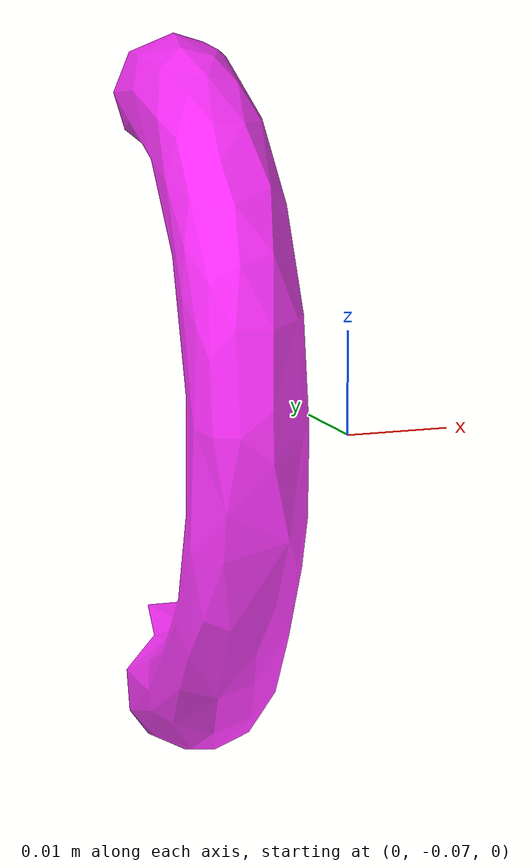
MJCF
<mujoco model="bottom_watertight_tiny">
  <default>
    <default group="2" type="mesh" contype="0" conaffinity="0">
      <geom group="2" type="mesh" contype="0" conaffinity="0"/>
    </default>
    <default group="3" type="mesh">
      <geom group="3" type="mesh"/>
    </default>
  </default>
  <asset>
    <mesh file="bottom_watertight_tiny.obj"/>
    <mesh file="bottom_watertight_tiny_collision_0.obj"/>
    <mesh file="bottom_watertight_tiny_collision_1.obj"/>
    <mesh file="bottom_watertight_tiny_collision_2.obj"/>
    <mesh file="bottom_watertight_tiny_collision_3.obj"/>
    <mesh file="bottom_watertight_tiny_collision_4.obj"/>
    <mesh file="bottom_watertight_tiny_collision_5.obj"/>
    <mesh file="bottom_watertight_tiny_collision_6.obj"/>
    <mesh file="bottom_watertight_tiny_collision_7.obj"/>
    <mesh file="bottom_watertight_tiny_collision_8.obj"/>
    <mesh file="bottom_watertight_tiny_collision_9.obj"/>
    <mesh file="bottom_watertight_tiny_collision_10.obj"/>
    <mesh file="bottom_watertight_tiny_collision_11.obj"/>
    <mesh file="bottom_watertight_tiny_collision_12.obj"/>
    <mesh file="bottom_watertight_tiny_collision_13.obj"/>
    <mesh file="bottom_watertight_tiny_collision_14.obj"/>
    <mesh file="bottom_watertight_tiny_collision_15.obj"/>
    <mesh file="bottom_watertight_tiny_collision_16.obj"/>
    <mesh file="bottom_watertight_tiny_collision_17.obj"/>
    <mesh file="bottom_watertight_tiny_collision_18.obj"/>
    <mesh file="bottom_watertight_tiny_collision_19.obj"/>
    <mesh file="bottom_watertight_tiny_collision_20.obj"/>
    <mesh file="bottom_watertight_tiny_collision_21.obj"/>
    <mesh file="bottom_watertight_tiny_collision_22.obj"/>
    <mesh file="bottom_watertight_tiny_collision_23.obj"/>
    <mesh file="bottom_watertight_tiny_collision_24.obj"/>
    <mesh file="bottom_watertight_tiny_collision_25.obj"/>
    <mesh file="bottom_watertight_tiny_collision_26.obj"/>
    <mesh file="bottom_watertight_tiny_collision_27.obj"/>
    <mesh file="bottom_watertight_tiny_collision_28.obj"/>
    <mesh file="bottom_watertight_tiny_collision_29.obj"/>
    <mesh file="bottom_watertight_tiny_collision_30.obj"/>
    <mesh file="bottom_watertight_tiny_collision_31.obj"/>
    <mesh file="bottom_watertight_tiny_collision_32.obj"/>
    <mesh file="bottom_watertight_tiny_collision_33.obj"/>
    <mesh file="bottom_watertight_tiny_collision_34.obj"/>
    <mesh file="bottom_watertight_tiny_collision_35.obj"/>
    <mesh file="bottom_watertight_tiny_collision_36.obj"/>
    <mesh file="bottom_watertight_tiny_collision_37.obj"/>
    <mesh file="bottom_watertight_tiny_collision_38.obj"/>
    <mesh file="bottom_watertight_tiny_collision_39.obj"/>
    <mesh file="bottom_watertight_tiny_collision_40.obj"/>
    <mesh file="bottom_watertight_tiny_collision_41.obj"/>
    <mesh file="bottom_watertight_tiny_collision_42.obj"/>
    <mesh file="bottom_watertight_tiny_collision_43.obj"/>
    <mesh file="bottom_watertight_tiny_collision_44.obj"/>
    <mesh file="bottom_watertight_tiny_collision_45.obj"/>
    <mesh file="bottom_watertight_tiny_collision_46.obj"/>
    <mesh file="bottom_watertight_tiny_collision_47.obj"/>
    <mesh file="bottom_watertight_tiny_collision_48.obj"/>
    <mesh file="bottom_watertight_tiny_collision_49.obj"/>
    <mesh file="bottom_watertight_tiny_collision_50.obj"/>
    <mesh file="bottom_watertight_tiny_collision_51.obj"/>
    <mesh file="bottom_watertight_tiny_collision_52.obj"/>
    <mesh file="bottom_watertight_tiny_collision_53.obj"/>
    <mesh file="bottom_watertight_tiny_collision_54.obj"/>
    <mesh file="bottom_watertight_tiny_collision_55.obj"/>
    <mesh file="bottom_watertight_tiny_collision_56.obj"/>
    <mesh file="bottom_watertight_tiny_collision_57.obj"/>
    <mesh file="bottom_watertight_tiny_collision_58.obj"/>
    <mesh file="bottom_watertight_tiny_collision_59.obj"/>
    <mesh file="bottom_watertight_tiny_collision_60.obj"/>
    <mesh file="bottom_watertight_tiny_collision_61.obj"/>
    <mesh file="bottom_watertight_tiny_collision_62.obj"/>
    <mesh file="bottom_watertight_tiny_collision_63.obj"/>
    <mesh file="bottom_watertight_tiny_collision_64.obj"/>
    <mesh file="bottom_watertight_tiny_collision_65.obj"/>
    <mesh file="bottom_watertight_tiny_collision_66.obj"/>
    <mesh file="bottom_watertight_tiny_collision_67.obj"/>
    <mesh file="bottom_watertight_tiny_collision_68.obj"/>
    <mesh file="bottom_watertight_tiny_collision_69.obj"/>
    <mesh file="bottom_watertight_tiny_collision_70.obj"/>
    <mesh file="bottom_watertight_tiny_collision_71.obj"/>
    <mesh file="bottom_watertight_tiny_collision_72.obj"/>
    <mesh file="bottom_watertight_tiny_collision_73.obj"/>
  </asset>
  <worldbody>
    <body name="bottom_watertight_tiny">
      <freejoint/>
      <geom mesh="bottom_watertight_tiny" group="2" type="mesh" rgba="1 0 1 0.8" contype="0" conaffinity="0"/>
      <geom mesh="bottom_watertight_tiny_collision_0" rgba="0.2661982995806905 0.4676332626579387 0.4519119276876259 1" group="3" type="mesh"/>
      <geom mesh="bottom_watertight_tiny_collision_1" rgba="0.8595370374040588 0.7059645942976167 0.41728403484289545 1" group="3" type="mesh"/>
      <geom mesh="bottom_watertight_tiny_collision_2" rgba="0.16626764929185434 0.453429640452392 0.015220581255409704 1" group="3" type="mesh"/>
      <geom mesh="bottom_watertight_tiny_collision_3" rgba="0.30299203094737526 0.3752993001803683 0.7675746967668867 1" group="3" type="mesh"/>
      <geom mesh="bottom_watertight_tiny_collision_4" rgba="0.9287270540088419 0.5153264108380241 0.8370341149271432 1" group="3" type="mesh"/>
      <geom mesh="bottom_watertight_tiny_collision_5" rgba="0.5917817103022843 0.596544974851241 0.16626053584438127 1" group="3" type="mesh"/>
      <geom mesh="bottom_watertight_tiny_collision_6" rgba="0.48889176643201626 0.5616411479382903 0.9799291418403003 1" group="3" type="mesh"/>
      <geom mesh="bottom_watertight_tiny_collision_7" rgba="0.2986399103481294 0.04053898294779679 0.28338244809940616 1" group="3" type="mesh"/>
      <geom mesh="bottom_watertight_tiny_collision_8" rgba="0.780087899600952 0.7340961805468269 0.40914235363230955 1" group="3" type="mesh"/>
      <geom mesh="bottom_watertight_tiny_collision_9" rgba="0.6880944108519546 0.975751264271548 0.381937393623238 1" group="3" type="mesh"/>
      <geom mesh="bottom_watertight_tiny_collision_10" rgba="0.06158649173120201 0.7140374992918006 0.20189670082773226 1" group="3" type="mesh"/>
      <geom mesh="bottom_watertight_tiny_collision_11" rgba="0.07057094289839516 0.2860209456810966 0.8236225881678699 1" group="3" type="mesh"/>
      <geom mesh="bottom_watertight_tiny_collision_12" rgba="0.19740309617489404 0.034903628521742225 0.545128793633911 1" group="3" type="mesh"/>
      <geom mesh="bottom_watertight_tiny_collision_13" rgba="0.7358824895975407 0.7959405106490927 0.00412480171073315 1" group="3" type="mesh"/>
      <geom mesh="bottom_watertight_tiny_collision_14" rgba="0.7591293021415257 0.47262317818476585 0.7179394048617904 1" group="3" type="mesh"/>
      <geom mesh="bottom_watertight_tiny_collision_15" rgba="0.9193605589348423 0.9748976948593846 0.3748146061614548 1" group="3" type="mesh"/>
      <geom mesh="bottom_watertight_tiny_collision_16" rgba="0.4206001414554299 0.4754759745832736 0.8402505286576037 1" group="3" type="mesh"/>
      <geom mesh="bottom_watertight_tiny_collision_17" rgba="0.30702921657950755 0.6747638477206379 0.24365279498874104 1" group="3" type="mesh"/>
      <geom mesh="bottom_watertight_tiny_collision_18" rgba="0.6165993432844942 0.09074091156384567 0.924898310207017 1" group="3" type="mesh"/>
      <geom mesh="bottom_watertight_tiny_collision_19" rgba="0.6485548531133183 0.8771959800779086 0.15195824089771026 1" group="3" type="mesh"/>
      <geom mesh="bottom_watertight_tiny_collision_20" rgba="0.6056871835850994 0.7305498714858929 0.5309490996377693 1" group="3" type="mesh"/>
      <geom mesh="bottom_watertight_tiny_collision_21" rgba="0.8018462533059392 0.20545401044476053 0.38686121043566923 1" group="3" type="mesh"/>
      <geom mesh="bottom_watertight_tiny_collision_22" rgba="0.5808012321369553 0.7989261824155959 0.7060239147812805 1" group="3" type="mesh"/>
      <geom mesh="bottom_watertight_tiny_collision_23" rgba="0.8685979189189756 0.046164434226025564 0.28413699616060517 1" group="3" type="mesh"/>
      <geom mesh="bottom_watertight_tiny_collision_24" rgba="0.24925803244454392 0.4307976732906943 0.5330590464314864 1" group="3" type="mesh"/>
      <geom mesh="bottom_watertight_tiny_collision_25" rgba="0.5410589536592014 0.5308990097896658 0.8271579190029041 1" group="3" type="mesh"/>
      <geom mesh="bottom_watertight_tiny_collision_26" rgba="0.0023192085965412224 0.3942049346894648 0.07280965897168434 1" group="3" type="mesh"/>
      <geom mesh="bottom_watertight_tiny_collision_27" rgba="0.3153534228155095 0.5694157170651244 0.8556735091867643 1" group="3" type="mesh"/>
      <geom mesh="bottom_watertight_tiny_collision_28" rgba="0.9254589369015572 0.9553410677046462 0.5973029059162502 1" group="3" type="mesh"/>
      <geom mesh="bottom_watertight_tiny_collision_29" rgba="0.89537051883169 0.5236640453983566 0.9482775396821199 1" group="3" type="mesh"/>
      <geom mesh="bottom_watertight_tiny_collision_30" rgba="0.15035684619578937 0.2593351371688438 0.8011100356204934 1" group="3" type="mesh"/>
      <geom mesh="bottom_watertight_tiny_collision_31" rgba="0.07356750895133224 0.39259469289483506 0.5399859026240708 1" group="3" type="mesh"/>
      <geom mesh="bottom_watertight_tiny_collision_32" rgba="0.9098299085014144 0.9384231892247202 0.2704777145800783 1" group="3" type="mesh"/>
      <geom mesh="bottom_watertight_tiny_collision_33" rgba="0.5351880105149297 0.8121751862267086 0.7893905489564774 1" group="3" type="mesh"/>
      <geom mesh="bottom_watertight_tiny_collision_34" rgba="0.2165394897882128 0.7208428323090318 0.5767457886541989 1" group="3" type="mesh"/>
      <geom mesh="bottom_watertight_tiny_collision_35" rgba="0.7021267903649732 0.9961943774600299 0.7935678259851415 1" group="3" type="mesh"/>
      <geom mesh="bottom_watertight_tiny_collision_36" rgba="0.280581666881751 0.49356529911353586 0.92434092718943 1" group="3" type="mesh"/>
      <geom mesh="bottom_watertight_tiny_collision_37" rgba="0.45539652546733544 0.4656369501350942 0.6516192898547137 1" group="3" type="mesh"/>
      <geom mesh="bottom_watertight_tiny_collision_38" rgba="0.8689540426195042 0.3261836139564943 0.4328206646987016 1" group="3" type="mesh"/>
      <geom mesh="bottom_watertight_tiny_collision_39" rgba="0.20238683545846614 0.3458656031663282 0.6690723404156141 1" group="3" type="mesh"/>
      <geom mesh="bottom_watertight_tiny_collision_40" rgba="0.33560852433445343 0.4973063915523719 0.7421549058596415 1" group="3" type="mesh"/>
      <geom mesh="bottom_watertight_tiny_collision_41" rgba="0.022068026638446203 0.2648187970544853 0.71106067356438 1" group="3" type="mesh"/>
      <geom mesh="bottom_watertight_tiny_collision_42" rgba="0.014365128950363126 0.3124624883308439 0.2605278439429646 1" group="3" type="mesh"/>
      <geom mesh="bottom_watertight_tiny_collision_43" rgba="0.12839557507971056 0.057816268822794115 0.39596939773086937 1" group="3" type="mesh"/>
      <geom mesh="bottom_watertight_tiny_collision_44" rgba="0.10032923920871906 0.7506371673929142 0.5770190543879238 1" group="3" type="mesh"/>
      <geom mesh="bottom_watertight_tiny_collision_45" rgba="0.08889509694636877 0.6837998927563192 0.9099668521828784 1" group="3" type="mesh"/>
      <geom mesh="bottom_watertight_tiny_collision_46" rgba="0.21815832921115597 0.3590081400741655 0.006358459623462487 1" group="3" type="mesh"/>
      <geom mesh="bottom_watertight_tiny_collision_47" rgba="0.17416426350172365 0.7479439543365155 0.42427651366787034 1" group="3" type="mesh"/>
      <geom mesh="bottom_watertight_tiny_collision_48" rgba="0.0360554569602084 0.9586386847761825 0.9927264685582948 1" group="3" type="mesh"/>
      <geom mesh="bottom_watertight_tiny_collision_49" rgba="0.16735606823210325 0.7623529631747031 0.23866241149838896 1" group="3" type="mesh"/>
      <geom mesh="bottom_watertight_tiny_collision_50" rgba="0.12820253082992372 0.3436906967217791 0.7494155158084168 1" group="3" type="mesh"/>
      <geom mesh="bottom_watertight_tiny_collision_51" rgba="0.706815791731173 0.3709522847101032 0.12066888967971034 1" group="3" type="mesh"/>
      <geom mesh="bottom_watertight_tiny_collision_52" rgba="0.6765654943286494 0.014220712212312803 0.43560904678671064 1" group="3" type="mesh"/>
      <geom mesh="bottom_watertight_tiny_collision_53" rgba="0.6673786124782858 0.7448639571572604 0.011748342854439153 1" group="3" type="mesh"/>
      <geom mesh="bottom_watertight_tiny_collision_54" rgba="0.20806871723077014 0.19150331632248907 0.47752346382715083 1" group="3" type="mesh"/>
      <geom mesh="bottom_watertight_tiny_collision_55" rgba="0.675252165454647 0.03535112747533875 0.14762099259973294 1" group="3" type="mesh"/>
      <geom mesh="bottom_watertight_tiny_collision_56" rgba="0.8261618328040563 0.556080019965453 0.8000494526117523 1" group="3" type="mesh"/>
      <geom mesh="bottom_watertight_tiny_collision_57" rgba="0.3626821737242123 0.33241344148770524 0.9405877529714367 1" group="3" type="mesh"/>
      <geom mesh="bottom_watertight_tiny_collision_58" rgba="0.9083440108971494 0.6003297458153771 0.7563367536809378 1" group="3" type="mesh"/>
      <geom mesh="bottom_watertight_tiny_collision_59" rgba="0.04401690201934805 0.6750732082029108 0.6521925954970601 1" group="3" type="mesh"/>
      <geom mesh="bottom_watertight_tiny_collision_60" rgba="0.6241540752957758 0.3912013889368552 0.8432103901810254 1" group="3" type="mesh"/>
      <geom mesh="bottom_watertight_tiny_collision_61" rgba="0.8264895896019981 0.5003930084794666 0.07627714171754774 1" group="3" type="mesh"/>
      <geom mesh="bottom_watertight_tiny_collision_62" rgba="0.4791317433248592 0.5541279417525133 0.724210929305376 1" group="3" type="mesh"/>
      <geom mesh="bottom_watertight_tiny_collision_63" rgba="0.6821941414498573 0.1287096210657822 0.41112007506703074 1" group="3" type="mesh"/>
      <geom mesh="bottom_watertight_tiny_collision_64" rgba="0.17931036736992145 0.20149305393947103 0.45550813601329965 1" group="3" type="mesh"/>
      <geom mesh="bottom_watertight_tiny_collision_65" rgba="0.4160176480355797 0.4776146484201865 0.4733845272794964 1" group="3" type="mesh"/>
      <geom mesh="bottom_watertight_tiny_collision_66" rgba="0.2962583175551521 0.25943102089632397 0.071368085032257 1" group="3" type="mesh"/>
      <geom mesh="bottom_watertight_tiny_collision_67" rgba="0.009003446209685628 0.8909556747259247 0.0015513932035956524 1" group="3" type="mesh"/>
      <geom mesh="bottom_watertight_tiny_collision_68" rgba="0.2556181904156797 0.19561018644094774 0.07758629130248529 1" group="3" type="mesh"/>
      <geom mesh="bottom_watertight_tiny_collision_69" rgba="0.47134074527951453 0.23904135575555996 0.20497553454890627 1" group="3" type="mesh"/>
      <geom mesh="bottom_watertight_tiny_collision_70" rgba="0.2132611838666596 0.14138323828337673 0.702386950209764 1" group="3" type="mesh"/>
      <geom mesh="bottom_watertight_tiny_collision_71" rgba="0.5582926406161483 0.7932787352659844 0.1436497705465788 1" group="3" type="mesh"/>
      <geom mesh="bottom_watertight_tiny_collision_72" rgba="0.8246516689839284 0.398045765937625 0.41635126139808765 1" group="3" type="mesh"/>
      <geom mesh="bottom_watertight_tiny_collision_73" rgba="0.7604858292523572 0.9852227742178782 0.9631305681671289 1" group="3" type="mesh"/>
    </body>
  </worldbody>
</mujoco>
